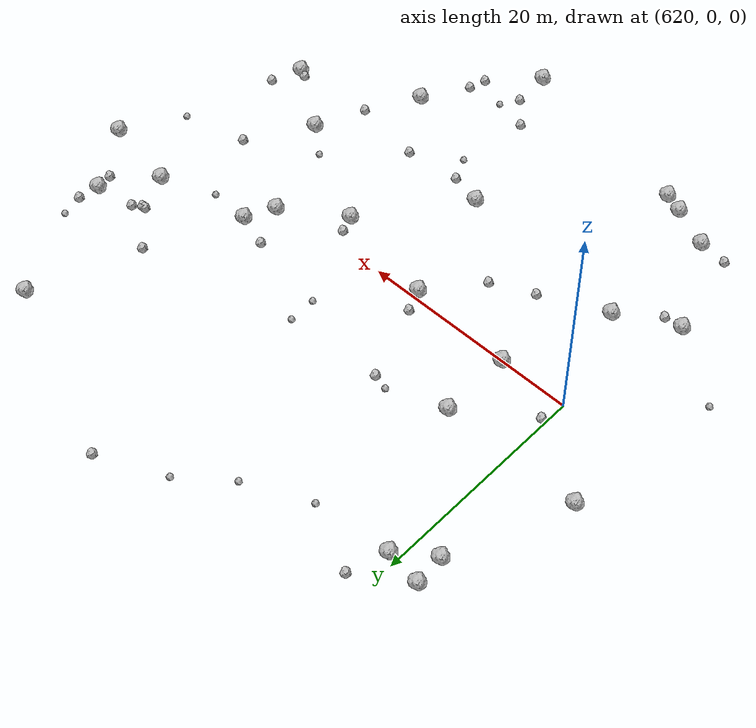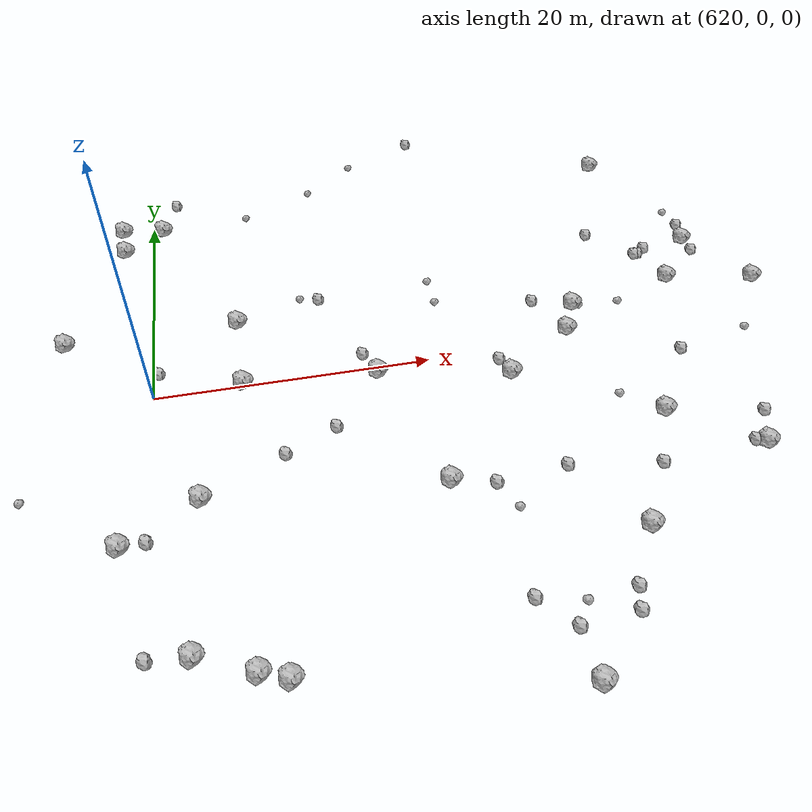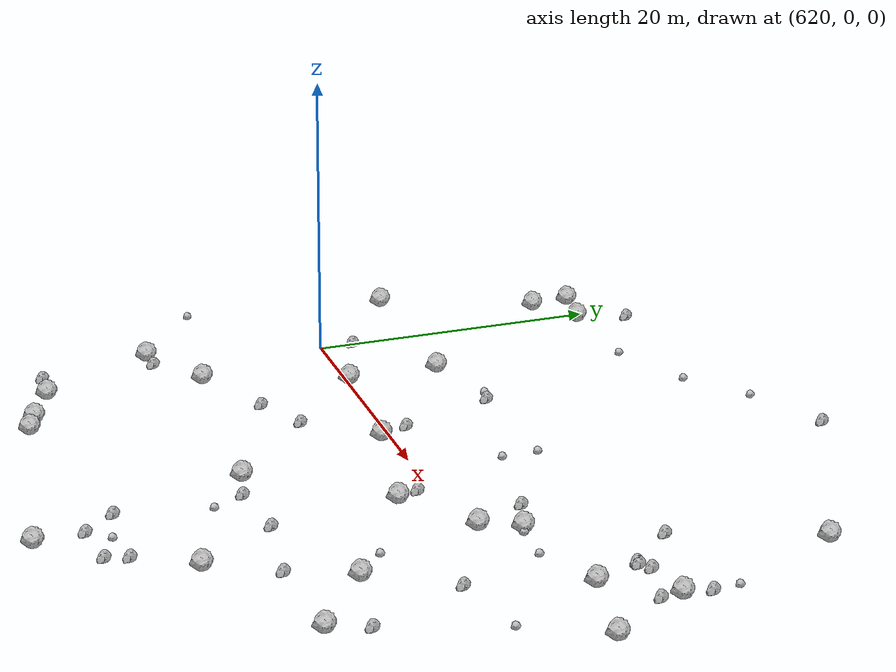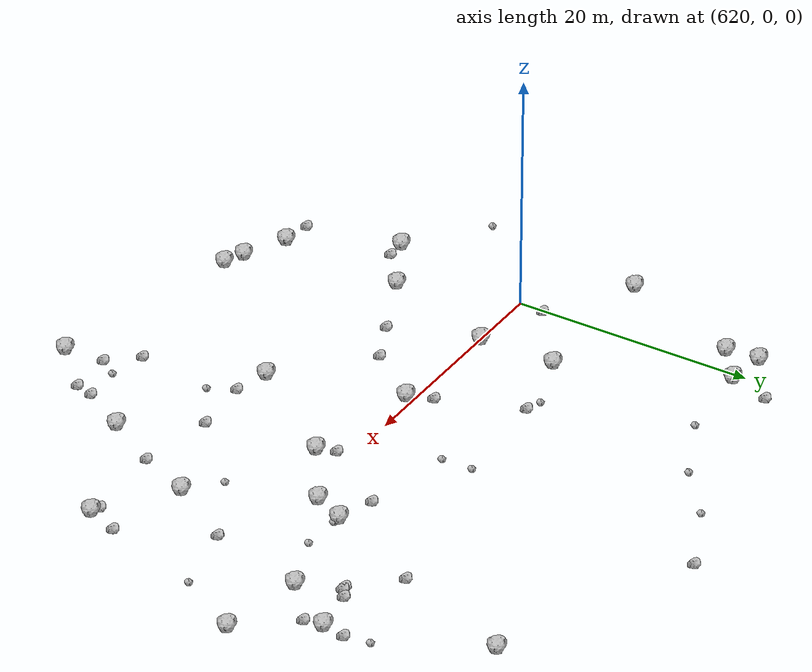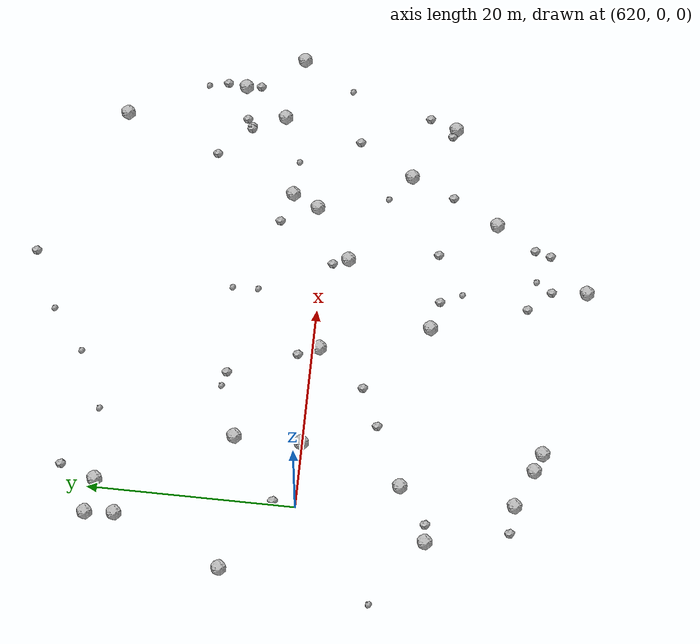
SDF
<sdf version="1.6">
 <world name="default">
  <include><uri>model://sun</uri></include>
  <model name="rock1_16_3">
   <include><uri>model://rock1</uri><pose>613.5410232152286 6.543598959346447 0.5 0 0 0</pose></include>
  </model>
  <model name="rock1_16_4">
   <include><uri>model://rock1</uri><pose>625.8419093454646 -22.244491834805924 0.5 0 0 0</pose></include>
  </model>
  <model name="rock1_16_5">
   <include><uri>model://rock1</uri><pose>623.0462912520416 -9.632304137666136 0.5 0 0 0</pose></include>
  </model>
  <model name="rock1_16_6">
   <include><uri>model://rock1</uri><pose>650.892854624385 -17.11979802516399 0.5 0 0 0</pose></include>
  </model>
  <model name="rock1_16_7">
   <include><uri>model://rock1</uri><pose>626.3709455884864 6.608884444256795 0.5 0 0 0</pose></include>
  </model>
  <model name="rock1_16_8">
   <include><uri>model://rock1</uri><pose>620.8664973213404 19.331850291639505 0.5 0 0 0</pose></include>
  </model>
  <model name="rock1_16_9">
   <include><uri>model://rock1</uri><pose>645.6928833120115 -2.578593179785532 0.5 0 0 0</pose></include>
  </model>
  <model name="rock1_16_10">
   <include><uri>model://rock1</uri><pose>667.565793394718 4.046922561067092 0.5 0 0 0</pose></include>
  </model>
  <model name="rock1_16_11">
   <include><uri>model://rock1</uri><pose>652.2573643280302 3.6576634667412193 0.5 0 0 0</pose></include>
  </model>
  <model name="rock1_16_12">
   <include><uri>model://rock1</uri><pose>659.6538848298183 21.570546282109547 0.5 0 0 0</pose></include>
  </model>
  <model name="rock1_16_13">
   <include><uri>model://rock1</uri><pose>622.2271743410612 -20.578220163395265 0.5 0 0 0</pose></include>
  </model>
  <model name="rock1_16_14">
   <include><uri>model://rock1</uri><pose>617.7515441210555 17.02673806508276 0.5 0 0 0</pose></include>
  </model>
  <model name="rock1_16_15">
   <include><uri>model://rock1</uri><pose>636.1257510630317 -0.6210007205868351 0.5 0 0 0</pose></include>
  </model>
  <model name="rock1_16_16">
   <include><uri>model://rock1</uri><pose>651.0121478804734 1.0329953992843528 0.5 0 0 0</pose></include>
  </model>
  <model name="rock1_16_17">
   <include><uri>model://rock1</uri><pose>617.9366455639932 -12.39534201584685 0.5 0 0 0</pose></include>
  </model>
  <model name="rock1_16_18">
   <include><uri>model://rock1</uri><pose>617.5637581630998 19.797181289103847 0.5 0 0 0</pose></include>
  </model>
  <model name="rock1_16_19">
   <include><uri>model://rock1</uri><pose>663.8735097080715 9.773784372134813 0.5 0 0 0</pose></include>
  </model>
  <model name="rock1_16_20">
   <include><uri>model://rock1</uri><pose>639.239794251173 -11.284760776485772 0.5 0 0 0</pose></include>
  </model>
  <model name="rock1_16_21">
   <include><uri>model://rock1</uri><pose>661.119693859716 -12.258538620194933 0.5 0 0 0</pose></include>
  </model>
  <model name="rock1_16_22">
   <include><uri>model://rock1</uri><pose>655.3540996436299 -8.181113725660289 0.5 0 0 0</pose></include>
  </model>
  <model name="rock1_16_23">
   <include><uri>model://rock1</uri><pose>627.5878867675607 -22.940908505458033 0.5 0 0 0</pose></include>
  </model>
  <model name="rock1_16_24">
   <include><uri>model://rock1</uri><pose>644.4777360955774 -26.409847438669367 0.5 0 0 0</pose></include>
  </model>
  <model name="rock1_16_25">
   <include><uri>model://rock1</uri><pose>660.7516402973307 5.349370176811405 0.5 0 0 0</pose></include>
  </model>
  <model name="rock1_16_26">
   <include><uri>model://rock1</uri><pose>626.3812436768707 0.13719284447159552 0.5 0 0 0</pose></include>
  </model>
  <model name="rock2_16_0">
   <include><uri>model://rock2</uri><pose>659.1448836113279 8.642893517956637 0.3 0 0 0</pose></include>
  </model>
  <model name="rock2_16_1">
   <include><uri>model://rock2</uri><pose>619.591751716884 -12.311316835598362 0.3 0 0 0</pose></include>
  </model>
  <model name="rock2_16_2">
   <include><uri>model://rock2</uri><pose>660.1929124494425 9.213033456970017 0.3 0 0 0</pose></include>
  </model>
  <model name="rock2_16_3">
   <include><uri>model://rock2</uri><pose>643.520107357284 28.5531643929926 0.3 0 0 0</pose></include>
  </model>
  <model name="rock2_16_4">
   <include><uri>model://rock2</uri><pose>635.2466890645269 1.4125695071128916 0.3 0 0 0</pose></include>
  </model>
  <model name="rock2_16_5">
   <include><uri>model://rock2</uri><pose>648.4948279814101 -21.105570063006006 0.3 0 0 0</pose></include>
  </model>
  <model name="rock2_16_6">
   <include><uri>model://rock2</uri><pose>621.9815541744828 22.778593786445626 0.3 0 0 0</pose></include>
  </model>
  <model name="rock2_16_7">
   <include><uri>model://rock2</uri><pose>660.3251816483742 -11.956462743047062 0.3 0 0 0</pose></include>
  </model>
  <model name="rock2_16_8">
   <include><uri>model://rock2</uri><pose>659.4387057184078 8.653229051379206 0.3 0 0 0</pose></include>
  </model>
  <model name="rock2_16_9">
   <include><uri>model://rock2</uri><pose>649.1874829512329 4.635034072671218 0.3 0 0 0</pose></include>
  </model>
  <model name="rock2_16_10">
   <include><uri>model://rock2</uri><pose>655.9960457203964 11.821112759135339 0.3 0 0 0</pose></include>
  </model>
  <model name="rock2_16_11">
   <include><uri>model://rock2</uri><pose>647.089230426569 -11.539662895160792 0.3 0 0 0</pose></include>
  </model>
  <model name="rock2_16_12">
   <include><uri>model://rock2</uri><pose>632.7360571645269 8.097686014569703 0.3 0 0 0</pose></include>
  </model>
  <model name="rock2_16_13">
   <include><uri>model://rock2</uri><pose>662.0892462008212 -9.557442732373048 0.3 0 0 0</pose></include>
  </model>
  <model name="rock2_16_14">
   <include><uri>model://rock2</uri><pose>653.4248877481318 -12.580781455370712 0.3 0 0 0</pose></include>
  </model>
  <model name="rock2_16_15">
   <include><uri>model://rock2</uri><pose>645.085333335718 -1.0573990677411231 0.3 0 0 0</pose></include>
  </model>
  <model name="rock2_16_16">
   <include><uri>model://rock2</uri><pose>628.7458177952557 -6.973028999697647 0.3 0 0 0</pose></include>
  </model>
  <model name="rock2_16_17">
   <include><uri>model://rock2</uri><pose>632.4353920710299 -5.240426307531678 0.3 0 0 0</pose></include>
  </model>
  <model name="rock2_16_18">
   <include><uri>model://rock2</uri><pose>648.0553401818999 -22.659705500514704 0.3 0 0 0</pose></include>
  </model>
  <model name="rock2_16_19">
   <include><uri>model://rock2</uri><pose>664.1200486803217 11.688593298427975 0.3 0 0 0</pose></include>
  </model>
  <model name="rock2_16_20">
   <include><uri>model://rock2</uri><pose>620.414824384528 2.2379543393894608 0.3 0 0 0</pose></include>
  </model>
  <model name="rock2_16_21">
   <include><uri>model://rock2</uri><pose>619.5657147681061 -20.30592457931948 0.3 0 0 0</pose></include>
  </model>
  <model name="rock2_16_22">
   <include><uri>model://rock2</uri><pose>644.2057247809909 -22.961821581113778 0.3 0 0 0</pose></include>
  </model>
  <model name="rock2_16_23">
   <include><uri>model://rock2</uri><pose>664.0413147957902 8.264698441087752 0.3 0 0 0</pose></include>
  </model>
  <model name="rock2_16_24">
   <include><uri>model://rock2</uri><pose>642.0891617390645 -12.031312576987276 0.3 0 0 0</pose></include>
  </model>
  <model name="rock2_16_25">
   <include><uri>model://rock2</uri><pose>658.7083069420943 -2.6271323939357636 0.3 0 0 0</pose></include>
  </model>
  <model name="rock2_16_26">
   <include><uri>model://rock2</uri><pose>642.1685320141244 -20.685059811660253 0.3 0 0 0</pose></include>
  </model>
  <model name="rock3_16_0">
   <include><uri>model://rock3</uri><pose>652.7247611022303 3.5149109757991894 0.2 0 0 0</pose></include>
  </model>
  <model name="rock3_16_1">
   <include><uri>model://rock3</uri><pose>611.5317651390217 -7.716800445216524 0.2 0 0 0</pose></include>
  </model>
  <model name="rock3_16_2">
   <include><uri>model://rock3</uri><pose>664.4552113583337 -1.3215260291612374 0.2 0 0 0</pose></include>
  </model>
  <model name="rock3_16_3">
   <include><uri>model://rock3</uri><pose>641.6821830317606 6.026999031307582 0.2 0 0 0</pose></include>
  </model>
  <model name="rock3_16_4">
   <include><uri>model://rock3</uri><pose>633.484923487891 22.50299770322421 0.2 0 0 0</pose></include>
  </model>
  <model name="rock3_16_5">
   <include><uri>model://rock3</uri><pose>663.6939149872268 13.639840901923058 0.2 0 0 0</pose></include>
  </model>
  <model name="rock3_16_6">
   <include><uri>model://rock3</uri><pose>643.067418577055 -14.203699187499572 0.2 0 0 0</pose></include>
  </model>
  <model name="rock3_16_7">
   <include><uri>model://rock3</uri><pose>627.8239050909376 19.89938996973399 0.2 0 0 0</pose></include>
  </model>
  <model name="rock3_16_8">
   <include><uri>model://rock3</uri><pose>641.5917004806221 8.574470535603886 0.2 0 0 0</pose></include>
  </model>
  <model name="rock3_16_9">
   <include><uri>model://rock3</uri><pose>652.684800214197 -6.070674294540655 0.2 0 0 0</pose></include>
  </model>
  <model name="rock3_16_10">
   <include><uri>model://rock3</uri><pose>631.3084344345475 8.43291129405899 0.2 0 0 0</pose></include>
  </model>
  <model name="rock3_16_11">
   <include><uri>model://rock3</uri><pose>655.8858244464406 3.3797441123512257 0.2 0 0 0</pose></include>
  </model>
  <model name="rock3_16_12">
   <include><uri>model://rock3</uri><pose>637.6105517708743 25.812663583366472 0.2 0 0 0</pose></include>
  </model>
  <model name="rock3_16_13">
   <include><uri>model://rock3</uri><pose>645.1989281300444 -21.446227369902015 0.2 0 0 0</pose></include>
  </model>
 </world>
</sdf>
